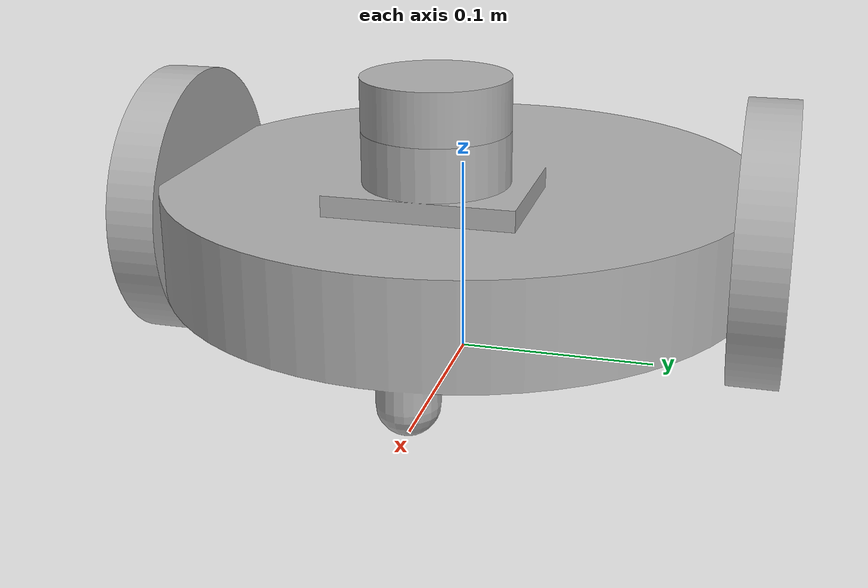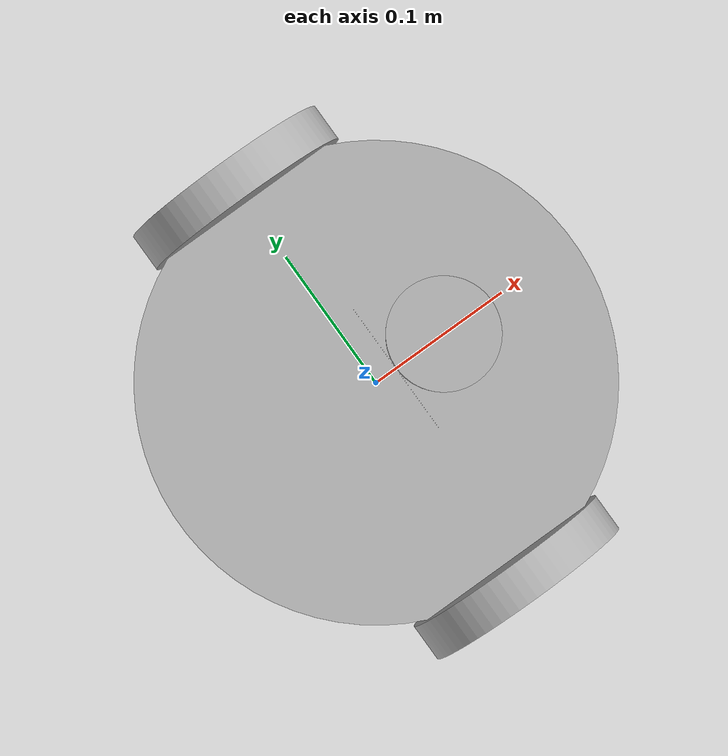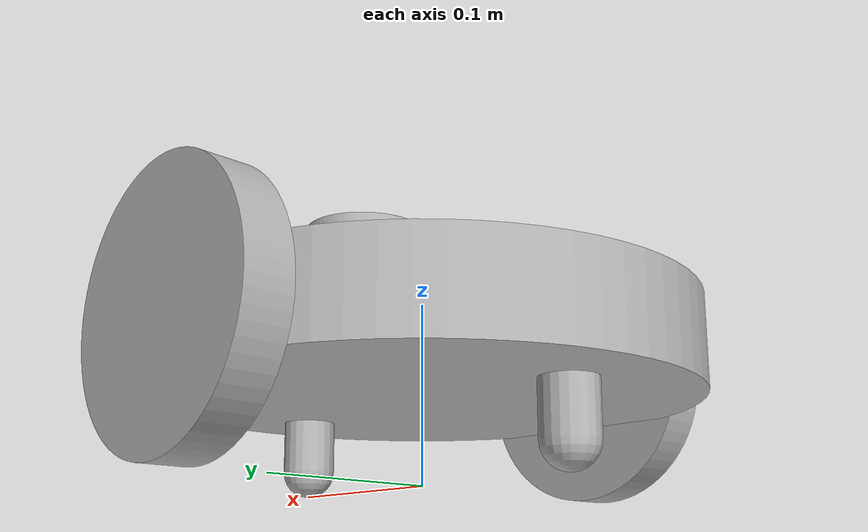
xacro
<?xml version="1.0" ?>
<robot name="micro_bot" xmlns:xacro="http://www.ros.org/wiki/xacro">

<xacro:include filename="$(find micro_bot_description)/urdf/materials.xacro" />
<xacro:include filename="$(find micro_bot_description)/urdf/micro_bot.trans" />
<xacro:include filename="$(find micro_bot_description)/urdf/micro_bot.gazebo" />
<link name="base_link">
  <inertial>
    <origin rpy="0 0 0" xyz="0.0021815726270772557 -1.9939580240236103e-17 0.07107056925614735"/>
    <mass value="3.8679425434800967"/>
    <inertia ixx="0.020157" ixy="-0.0" ixz="-0.000333" iyy="0.02324" iyz="-0.0" izz="0.041036"/>
  </inertial>
  <visual>
    <origin rpy="0 0 0" xyz="0 0 0"/>
    <geometry>
      <mesh filename="package://micro_bot_description/meshes/base_link.stl" scale="0.001 0.001 0.001"/>
    </geometry>
    <material name="silver"/>
  </visual>
  <collision>
    <origin rpy="0 0 0" xyz="0 0 0"/>
    <geometry>
      <mesh filename="package://micro_bot_description/meshes/base_link.stl" scale="0.001 0.001 0.001"/>
    </geometry>
  </collision>
</link>

<link name="right_wheel_1">
  <inertial>
    <origin rpy="0 0 0" xyz="1.1816373673718417e-17 -0.012500270848675193 0.0"/>
    <mass value="0.35790594306021745"/>
    <inertia ixx="0.000457" ixy="-0.0" ixz="-0.0" iyy="0.000877" iyz="0.0" izz="0.000457"/>
  </inertial>
  <visual>
    <origin rpy="0 0 0" xyz="-0.0 0.137477 -0.07"/>
    <geometry>
      <mesh filename="package://micro_bot_description/meshes/right_wheel_1.stl" scale="0.001 0.001 0.001"/>
    </geometry>
    <material name="silver"/>
  </visual>
  <collision>
    <origin rpy="0 0 0" xyz="-0.0 0.137477 -0.07"/>
    <geometry>
      <mesh filename="package://micro_bot_description/meshes/right_wheel_1.stl" scale="0.001 0.001 0.001"/>
    </geometry>
  </collision>
</link>

<link name="left_wheel_1">
  <inertial>
    <origin rpy="0 0 0" xyz="1.1816373673718417e-17 0.012500270848675193 0.0"/>
    <mass value="0.35790594306021745"/>
    <inertia ixx="0.000457" ixy="0.0" ixz="-0.0" iyy="0.000877" iyz="-0.0" izz="0.000457"/>
  </inertial>
  <visual>
    <origin rpy="0 0 0" xyz="-0.0 -0.137477 -0.07"/>
    <geometry>
      <mesh filename="package://micro_bot_description/meshes/left_wheel_1.stl" scale="0.001 0.001 0.001"/>
    </geometry>
    <material name="silver"/>
  </visual>
  <collision>
    <origin rpy="0 0 0" xyz="-0.0 -0.137477 -0.07"/>
    <geometry>
      <mesh filename="package://micro_bot_description/meshes/left_wheel_1.stl" scale="0.001 0.001 0.001"/>
    </geometry>
  </collision>
</link>

<link name="lidar_1">
  <inertial>
    <origin rpy="0 0 0" xyz="-1.3877787807814457e-17 0.0 0.012499999999999983"/>
    <mass value="0.7552585088770707"/>
    <inertia ixx="0.000271" ixy="0.0" ixz="-0.0" iyy="0.000271" iyz="0.0" izz="0.000463"/>
  </inertial>
  <visual>
    <origin rpy="0 0 0" xyz="-0.05 -0.0 -0.13"/>
    <geometry>
      <mesh filename="package://micro_bot_description/meshes/lidar_1.stl" scale="0.001 0.001 0.001"/>
    </geometry>
    <material name="silver"/>
  </visual>
  <collision>
    <origin rpy="0 0 0" xyz="-0.05 -0.0 -0.13"/>
    <geometry>
      <mesh filename="package://micro_bot_description/meshes/lidar_1.stl" scale="0.001 0.001 0.001"/>
    </geometry>
  </collision>
</link>

<joint name="Rev1" type="continuous">
  <origin rpy="0 0 0" xyz="0.0 -0.137477 0.07"/>
  <parent link="base_link"/>
  <child link="right_wheel_1"/>
  <axis xyz="0.0 -1.0 0.0"/>
</joint>

<joint name="Rev2" type="continuous">
  <origin rpy="0 0 0" xyz="0.0 0.137477 0.07"/>
  <parent link="base_link"/>
  <child link="left_wheel_1"/>
  <axis xyz="0.0 1.0 0.0"/>
</joint>

<joint name="Rigid3" type="fixed">
  <origin rpy="0 0 0" xyz="0.05 0.0 0.13"/>
  <parent link="base_link"/>
  <child link="lidar_1"/>
</joint>

</robot>

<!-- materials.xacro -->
<robot name="micro_bot" xmlns:xacro="http://www.ros.org/wiki/xacro" >

<material name="silver">
  <color rgba="0.700 0.700 0.700 1.000"/>
</material>

</robot>

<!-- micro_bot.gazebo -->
<robot name="micro_bot" xmlns:xacro="http://www.ros.org/wiki/xacro" >

<xacro:property name="body_color" value="Gazebo/Silver" />

<gazebo>
  <plugin filename="libgazebo_ros_control.so" name="control"/>
</gazebo>
<gazebo reference="base_link">
  <material>${body_color}</material>
  <mu1>0.2</mu1>
  <mu2>0.2</mu2>
  <selfCollide>true</selfCollide>
  <gravity>true</gravity>
</gazebo>

<gazebo reference="right_wheel_1">
  <material>${body_color}</material>
  <mu1>0.2</mu1>
  <mu2>0.2</mu2>
  <selfCollide>true</selfCollide>
</gazebo>

<gazebo reference="left_wheel_1">
  <material>${body_color}</material>
  <mu1>0.2</mu1>
  <mu2>0.2</mu2>
  <selfCollide>true</selfCollide>
</gazebo>

<gazebo reference="lidar_1">
  <material>${body_color}</material>
  <mu1>0.2</mu1>
  <mu2>0.2</mu2>
  <selfCollide>true</selfCollide>
</gazebo>

</robot>
